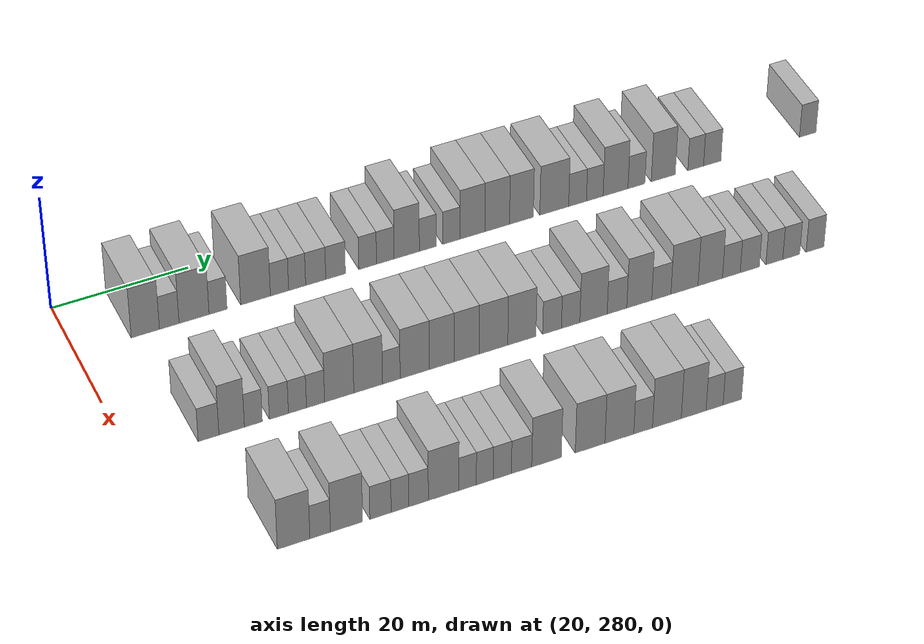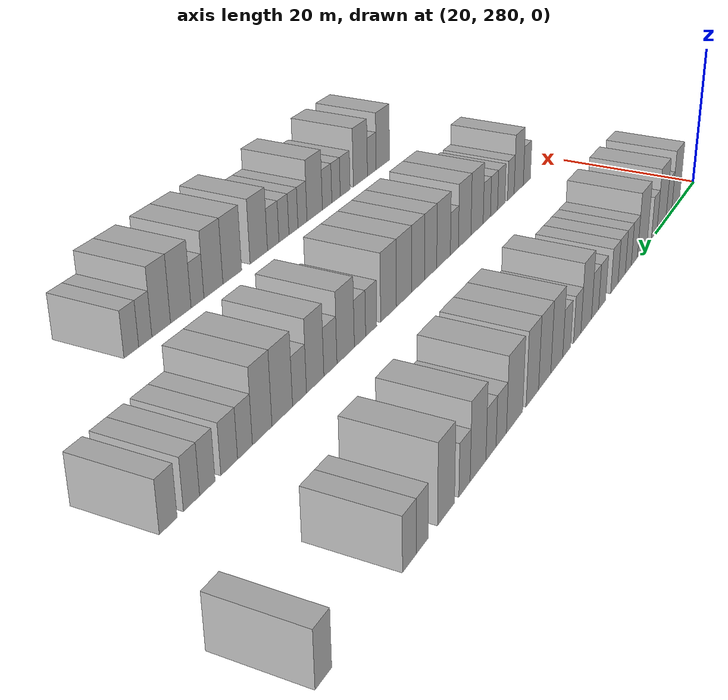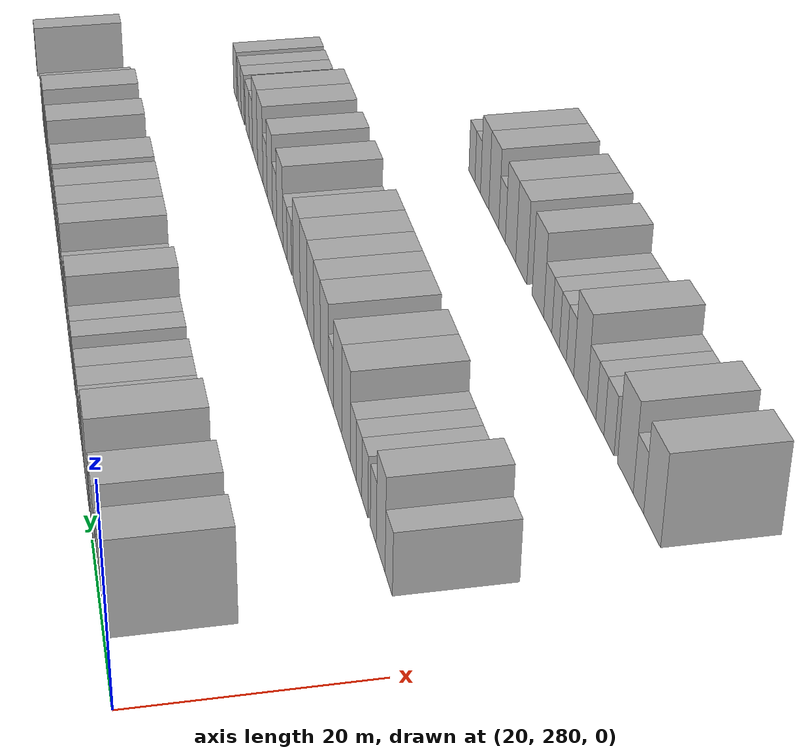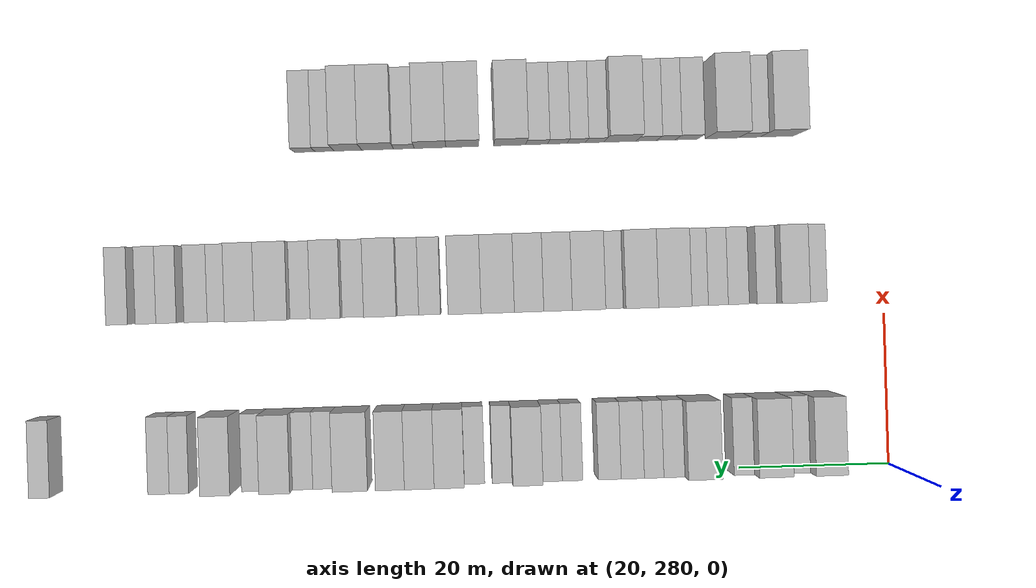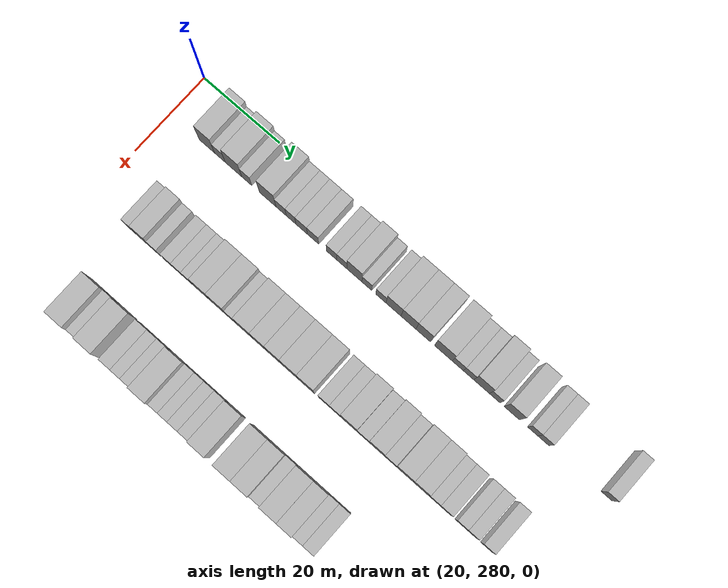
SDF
<sdf version="1.6">
 <world name="default">
  <model name="building_173">
   <static>1</static>
   <pose>25.0000 289.9351 0 0.000000 0.000000 0.000000</pose>
   <link name="link">
    <pose>0 0 4.50 0 0 0</pose>
    <collision name="collision"><geometry><box><size>10.0000 4.0718 9.0000</size></box></geometry></collision>
    <visual name="visual">
     <cast_shadows>0</cast_shadows>
     <geometry><box><size>10.0000 4.0718 9.0000</size></box></geometry>
     <material>
      <script>
       <uri>model://HANNAS_wall/materials/scripts</uri>
       <uri>model://HANNAS_wall/materials/textures</uri>
       <name>vrc/HANNAS_wall</name>
      </script>
     </material>
    </visual>
   </link>
  </model>
  <model name="building_174">
   <static>1</static>
   <pose>25.0000 293.3876 0 0.000000 0.000000 0.000000</pose>
   <link name="link">
    <pose>0 0 3.00 0 0 0</pose>
    <collision name="collision"><geometry><box><size>10.0000 2.8333 6.0000</size></box></geometry></collision>
    <visual name="visual">
     <cast_shadows>0</cast_shadows>
     <geometry><box><size>10.0000 2.8333 6.0000</size></box></geometry>
     <material>
      <script>
       <uri>model://HANNAS_wall/materials/scripts</uri>
       <uri>model://HANNAS_wall/materials/textures</uri>
       <name>vrc/HANNAS_wall</name>
      </script>
     </material>
    </visual>
   </link>
  </model>
  <model name="building_175">
   <static>1</static>
   <pose>25.0000 296.9872 0 0.000000 0.000000 0.000000</pose>
   <link name="link">
    <pose>0 0 4.50 0 0 0</pose>
    <collision name="collision"><geometry><box><size>10.0000 4.3659 9.0000</size></box></geometry></collision>
    <visual name="visual">
     <cast_shadows>0</cast_shadows>
     <geometry><box><size>10.0000 4.3659 9.0000</size></box></geometry>
     <material>
      <script>
       <uri>model://HANNAS_wall/materials/scripts</uri>
       <uri>model://HANNAS_wall/materials/textures</uri>
       <name>vrc/HANNAS_wall</name>
      </script>
     </material>
    </visual>
   </link>
  </model>
  <model name="building_176">
   <static>1</static>
   <pose>25.0000 300.4805 0 0.000000 0.000000 0.000000</pose>
   <link name="link">
    <pose>0 0 3.00 0 0 0</pose>
    <collision name="collision"><geometry><box><size>10.0000 2.6206 6.0000</size></box></geometry></collision>
    <visual name="visual">
     <cast_shadows>0</cast_shadows>
     <geometry><box><size>10.0000 2.6206 6.0000</size></box></geometry>
     <material>
      <script>
       <uri>model://HANNAS_wall/materials/scripts</uri>
       <uri>model://HANNAS_wall/materials/textures</uri>
       <name>vrc/HANNAS_wall</name>
      </script>
     </material>
    </visual>
   </link>
  </model>
  <model name="building_177">
   <static>1</static>
   <pose>25.0000 305.9684 0 0.000000 0.000000 0.000000</pose>
   <link name="link">
    <pose>0 0 4.50 0 0 0</pose>
    <collision name="collision"><geometry><box><size>10.0000 4.3552 9.0000</size></box></geometry></collision>
    <visual name="visual">
     <cast_shadows>0</cast_shadows>
     <geometry><box><size>10.0000 4.3552 9.0000</size></box></geometry>
     <material>
      <script>
       <uri>model://HANNAS_wall/materials/scripts</uri>
       <uri>model://HANNAS_wall/materials/textures</uri>
       <name>vrc/HANNAS_wall</name>
      </script>
     </material>
    </visual>
   </link>
  </model>
  <model name="building_178">
   <static>1</static>
   <pose>25.0000 309.4941 0 0.000000 0.000000 0.000000</pose>
   <link name="link">
    <pose>0 0 3.00 0 0 0</pose>
    <collision name="collision"><geometry><box><size>10.0000 2.6962 6.0000</size></box></geometry></collision>
    <visual name="visual">
     <cast_shadows>0</cast_shadows>
     <geometry><box><size>10.0000 2.6962 6.0000</size></box></geometry>
     <material>
      <script>
       <uri>model://HANNAS_wall/materials/scripts</uri>
       <uri>model://HANNAS_wall/materials/textures</uri>
       <name>vrc/HANNAS_wall</name>
      </script>
     </material>
    </visual>
   </link>
  </model>
  <model name="building_179">
   <static>1</static>
   <pose>25.0000 312.0990 0 0.000000 0.000000 0.000000</pose>
   <link name="link">
    <pose>0 0 3.00 0 0 0</pose>
    <collision name="collision"><geometry><box><size>10.0000 2.5136 6.0000</size></box></geometry></collision>
    <visual name="visual">
     <cast_shadows>0</cast_shadows>
     <geometry><box><size>10.0000 2.5136 6.0000</size></box></geometry>
     <material>
      <script>
       <uri>model://HANNAS_wall/materials/scripts</uri>
       <uri>model://HANNAS_wall/materials/textures</uri>
       <name>vrc/HANNAS_wall</name>
      </script>
     </material>
    </visual>
   </link>
  </model>
  <model name="building_180">
   <static>1</static>
   <pose>25.0000 314.8518 0 0.000000 0.000000 0.000000</pose>
   <link name="link">
    <pose>0 0 3.00 0 0 0</pose>
    <collision name="collision"><geometry><box><size>10.0000 2.9920 6.0000</size></box></geometry></collision>
    <visual name="visual">
     <cast_shadows>0</cast_shadows>
     <geometry><box><size>10.0000 2.9920 6.0000</size></box></geometry>
     <material>
      <script>
       <uri>model://HANNAS_wall/materials/scripts</uri>
       <uri>model://HANNAS_wall/materials/textures</uri>
       <name>vrc/HANNAS_wall</name>
      </script>
     </material>
    </visual>
   </link>
  </model>
  <model name="building_181">
   <static>1</static>
   <pose>25.0000 317.8116 0 0.000000 0.000000 0.000000</pose>
   <link name="link">
    <pose>0 0 3.00 0 0 0</pose>
    <collision name="collision"><geometry><box><size>10.0000 2.9275 6.0000</size></box></geometry></collision>
    <visual name="visual">
     <cast_shadows>0</cast_shadows>
     <geometry><box><size>10.0000 2.9275 6.0000</size></box></geometry>
     <material>
      <script>
       <uri>model://HANNAS_wall/materials/scripts</uri>
       <uri>model://HANNAS_wall/materials/textures</uri>
       <name>vrc/HANNAS_wall</name>
      </script>
     </material>
    </visual>
   </link>
  </model>
  <model name="building_182">
   <static>1</static>
   <pose>25.0000 322.6029 0 0.000000 0.000000 0.000000</pose>
   <link name="link">
    <pose>0 0 3.00 0 0 0</pose>
    <collision name="collision"><geometry><box><size>10.0000 2.6552 6.0000</size></box></geometry></collision>
    <visual name="visual">
     <cast_shadows>0</cast_shadows>
     <geometry><box><size>10.0000 2.6552 6.0000</size></box></geometry>
     <material>
      <script>
       <uri>model://HANNAS_wall/materials/scripts</uri>
       <uri>model://HANNAS_wall/materials/textures</uri>
       <name>vrc/HANNAS_wall</name>
      </script>
     </material>
    </visual>
   </link>
  </model>
  <model name="building_183">
   <static>1</static>
   <pose>25.0000 325.2540 0 0.000000 0.000000 0.000000</pose>
   <link name="link">
    <pose>0 0 3.00 0 0 0</pose>
    <collision name="collision"><geometry><box><size>10.0000 2.6469 6.0000</size></box></geometry></collision>
    <visual name="visual">
     <cast_shadows>0</cast_shadows>
     <geometry><box><size>10.0000 2.6469 6.0000</size></box></geometry>
     <material>
      <script>
       <uri>model://HANNAS_wall/materials/scripts</uri>
       <uri>model://HANNAS_wall/materials/textures</uri>
       <name>vrc/HANNAS_wall</name>
      </script>
     </material>
    </visual>
   </link>
  </model>
  <model name="building_184">
   <static>1</static>
   <pose>25.0000 328.4794 0 0.000000 0.000000 0.000000</pose>
   <link name="link">
    <pose>0 0 4.50 0 0 0</pose>
    <collision name="collision"><geometry><box><size>10.0000 3.8039 9.0000</size></box></geometry></collision>
    <visual name="visual">
     <cast_shadows>0</cast_shadows>
     <geometry><box><size>10.0000 3.8039 9.0000</size></box></geometry>
     <material>
      <script>
       <uri>model://HANNAS_wall/materials/scripts</uri>
       <uri>model://HANNAS_wall/materials/textures</uri>
       <name>vrc/HANNAS_wall</name>
      </script>
     </material>
    </visual>
   </link>
  </model>
  <model name="building_185">
   <static>1</static>
   <pose>25.0000 331.6478 0 0.000000 0.000000 0.000000</pose>
   <link name="link">
    <pose>0 0 3.00 0 0 0</pose>
    <collision name="collision"><geometry><box><size>10.0000 2.5330 6.0000</size></box></geometry></collision>
    <visual name="visual">
     <cast_shadows>0</cast_shadows>
     <geometry><box><size>10.0000 2.5330 6.0000</size></box></geometry>
     <material>
      <script>
       <uri>model://HANNAS_wall/materials/scripts</uri>
       <uri>model://HANNAS_wall/materials/textures</uri>
       <name>vrc/HANNAS_wall</name>
      </script>
     </material>
    </visual>
   </link>
  </model>
  <model name="building_186">
   <static>1</static>
   <pose>25.0000 335.2297 0 0.000000 0.000000 0.000000</pose>
   <link name="link">
    <pose>0 0 3.00 0 0 0</pose>
    <collision name="collision"><geometry><box><size>10.0000 2.6307 6.0000</size></box></geometry></collision>
    <visual name="visual">
     <cast_shadows>0</cast_shadows>
     <geometry><box><size>10.0000 2.6307 6.0000</size></box></geometry>
     <material>
      <script>
       <uri>model://HANNAS_wall/materials/scripts</uri>
       <uri>model://HANNAS_wall/materials/textures</uri>
       <name>vrc/HANNAS_wall</name>
      </script>
     </material>
    </visual>
   </link>
  </model>
  <model name="building_187">
   <static>1</static>
   <pose>25.0000 338.4573 0 0.000000 0.000000 0.000000</pose>
   <link name="link">
    <pose>0 0 4.50 0 0 0</pose>
    <collision name="collision"><geometry><box><size>10.0000 3.8247 9.0000</size></box></geometry></collision>
    <visual name="visual">
     <cast_shadows>0</cast_shadows>
     <geometry><box><size>10.0000 3.8247 9.0000</size></box></geometry>
     <material>
      <script>
       <uri>model://HANNAS_wall/materials/scripts</uri>
       <uri>model://HANNAS_wall/materials/textures</uri>
       <name>vrc/HANNAS_wall</name>
      </script>
     </material>
    </visual>
   </link>
  </model>
  <model name="building_188">
   <static>1</static>
   <pose>25.0000 342.2574 0 0.000000 0.000000 0.000000</pose>
   <link name="link">
    <pose>0 0 4.50 0 0 0</pose>
    <collision name="collision"><geometry><box><size>10.0000 3.7754 9.0000</size></box></geometry></collision>
    <visual name="visual">
     <cast_shadows>0</cast_shadows>
     <geometry><box><size>10.0000 3.7754 9.0000</size></box></geometry>
     <material>
      <script>
       <uri>model://HANNAS_wall/materials/scripts</uri>
       <uri>model://HANNAS_wall/materials/textures</uri>
       <name>vrc/HANNAS_wall</name>
      </script>
     </material>
    </visual>
   </link>
  </model>
  <model name="building_189">
   <static>1</static>
   <pose>25.0000 345.9804 0 0.000000 0.000000 0.000000</pose>
   <link name="link">
    <pose>0 0 4.50 0 0 0</pose>
    <collision name="collision"><geometry><box><size>10.0000 3.6707 9.0000</size></box></geometry></collision>
    <visual name="visual">
     <cast_shadows>0</cast_shadows>
     <geometry><box><size>10.0000 3.6707 9.0000</size></box></geometry>
     <material>
      <script>
       <uri>model://HANNAS_wall/materials/scripts</uri>
       <uri>model://HANNAS_wall/materials/textures</uri>
       <name>vrc/HANNAS_wall</name>
      </script>
     </material>
    </visual>
   </link>
  </model>
  <model name="building_190">
   <static>1</static>
   <pose>25.0000 351.0580 0 0.000000 0.000000 0.000000</pose>
   <link name="link">
    <pose>0 0 4.50 0 0 0</pose>
    <collision name="collision"><geometry><box><size>10.0000 4.4845 9.0000</size></box></geometry></collision>
    <visual name="visual">
     <cast_shadows>0</cast_shadows>
     <geometry><box><size>10.0000 4.4845 9.0000</size></box></geometry>
     <material>
      <script>
       <uri>model://HANNAS_wall/materials/scripts</uri>
       <uri>model://HANNAS_wall/materials/textures</uri>
       <name>vrc/HANNAS_wall</name>
      </script>
     </material>
    </visual>
   </link>
  </model>
  <model name="building_191">
   <static>1</static>
   <pose>25.0000 354.6839 0 0.000000 0.000000 0.000000</pose>
   <link name="link">
    <pose>0 0 3.00 0 0 0</pose>
    <collision name="collision"><geometry><box><size>10.0000 2.7673 6.0000</size></box></geometry></collision>
    <visual name="visual">
     <cast_shadows>0</cast_shadows>
     <geometry><box><size>10.0000 2.7673 6.0000</size></box></geometry>
     <material>
      <script>
       <uri>model://HANNAS_wall/materials/scripts</uri>
       <uri>model://HANNAS_wall/materials/textures</uri>
       <name>vrc/HANNAS_wall</name>
      </script>
     </material>
    </visual>
   </link>
  </model>
  <model name="building_192">
   <static>1</static>
   <pose>25.0000 357.3689 0 0.000000 0.000000 0.000000</pose>
   <link name="link">
    <pose>0 0 3.00 0 0 0</pose>
    <collision name="collision"><geometry><box><size>10.0000 2.6028 6.0000</size></box></geometry></collision>
    <visual name="visual">
     <cast_shadows>0</cast_shadows>
     <geometry><box><size>10.0000 2.6028 6.0000</size></box></geometry>
     <material>
      <script>
       <uri>model://HANNAS_wall/materials/scripts</uri>
       <uri>model://HANNAS_wall/materials/textures</uri>
       <name>vrc/HANNAS_wall</name>
      </script>
     </material>
    </visual>
   </link>
  </model>
  <model name="building_193">
   <static>1</static>
   <pose>25.0000 360.6228 0 0.000000 0.000000 0.000000</pose>
   <link name="link">
    <pose>0 0 4.50 0 0 0</pose>
    <collision name="collision"><geometry><box><size>10.0000 3.9051 9.0000</size></box></geometry></collision>
    <visual name="visual">
     <cast_shadows>0</cast_shadows>
     <geometry><box><size>10.0000 3.9051 9.0000</size></box></geometry>
     <material>
      <script>
       <uri>model://HANNAS_wall/materials/scripts</uri>
       <uri>model://HANNAS_wall/materials/textures</uri>
       <name>vrc/HANNAS_wall</name>
      </script>
     </material>
    </visual>
   </link>
  </model>
  <model name="building_194">
   <static>1</static>
   <pose>25.0000 363.9101 0 0.000000 0.000000 0.000000</pose>
   <link name="link">
    <pose>0 0 3.00 0 0 0</pose>
    <collision name="collision"><geometry><box><size>10.0000 2.6695 6.0000</size></box></geometry></collision>
    <visual name="visual">
     <cast_shadows>0</cast_shadows>
     <geometry><box><size>10.0000 2.6695 6.0000</size></box></geometry>
     <material>
      <script>
       <uri>model://HANNAS_wall/materials/scripts</uri>
       <uri>model://HANNAS_wall/materials/textures</uri>
       <name>vrc/HANNAS_wall</name>
      </script>
     </material>
    </visual>
   </link>
  </model>
  <model name="building_195">
   <static>1</static>
   <pose>25.0000 368.1461 0 0.000000 0.000000 0.000000</pose>
   <link name="link">
    <pose>0 0 4.50 0 0 0</pose>
    <collision name="collision"><geometry><box><size>10.0000 3.8025 9.0000</size></box></geometry></collision>
    <visual name="visual">
     <cast_shadows>0</cast_shadows>
     <geometry><box><size>10.0000 3.8025 9.0000</size></box></geometry>
     <material>
      <script>
       <uri>model://HANNAS_wall/materials/scripts</uri>
       <uri>model://HANNAS_wall/materials/textures</uri>
       <name>vrc/HANNAS_wall</name>
      </script>
     </material>
    </visual>
   </link>
  </model>
  <model name="building_196">
   <static>1</static>
   <pose>25.0000 373.3013 0 0.000000 0.000000 0.000000</pose>
   <link name="link">
    <pose>0 0 3.00 0 0 0</pose>
    <collision name="collision"><geometry><box><size>10.0000 2.5080 6.0000</size></box></geometry></collision>
    <visual name="visual">
     <cast_shadows>0</cast_shadows>
     <geometry><box><size>10.0000 2.5080 6.0000</size></box></geometry>
     <material>
      <script>
       <uri>model://HANNAS_wall/materials/scripts</uri>
       <uri>model://HANNAS_wall/materials/textures</uri>
       <name>vrc/HANNAS_wall</name>
      </script>
     </material>
    </visual>
   </link>
  </model>
  <model name="building_197">
   <static>1</static>
   <pose>25.0000 375.9364 0 0.000000 0.000000 0.000000</pose>
   <link name="link">
    <pose>0 0 3.00 0 0 0</pose>
    <collision name="collision"><geometry><box><size>10.0000 2.7621 6.0000</size></box></geometry></collision>
    <visual name="visual">
     <cast_shadows>0</cast_shadows>
     <geometry><box><size>10.0000 2.7621 6.0000</size></box></geometry>
     <material>
      <script>
       <uri>model://HANNAS_wall/materials/scripts</uri>
       <uri>model://HANNAS_wall/materials/textures</uri>
       <name>vrc/HANNAS_wall</name>
      </script>
     </material>
    </visual>
   </link>
  </model>
  <model name="building_198">
   <static>1</static>
   <pose>25.0000 391.3375 0 0.000000 0.000000 0.000000</pose>
   <link name="link">
    <pose>0 0 3.00 0 0 0</pose>
    <collision name="collision"><geometry><box><size>10.0000 2.6801 6.0000</size></box></geometry></collision>
    <visual name="visual">
     <cast_shadows>0</cast_shadows>
     <geometry><box><size>10.0000 2.6801 6.0000</size></box></geometry>
     <material>
      <script>
       <uri>model://HANNAS_wall/materials/scripts</uri>
       <uri>model://HANNAS_wall/materials/textures</uri>
       <name>vrc/HANNAS_wall</name>
      </script>
     </material>
    </visual>
   </link>
  </model>
  <model name="building_374">
   <static>1</static>
   <pose>47.0000 290.5234 0 0.000000 0.000000 0.000000</pose>
   <link name="link">
    <pose>0 0 3.00 0 0 0</pose>
    <collision name="collision"><geometry><box><size>10.0000 2.9146 6.0000</size></box></geometry></collision>
    <visual name="visual">
     <cast_shadows>0</cast_shadows>
     <geometry><box><size>10.0000 2.9146 6.0000</size></box></geometry>
     <material>
      <script>
       <uri>model://HANNAS_wall/materials/scripts</uri>
       <uri>model://HANNAS_wall/materials/textures</uri>
       <name>vrc/HANNAS_wall</name>
      </script>
     </material>
    </visual>
   </link>
  </model>
  <model name="building_375">
   <static>1</static>
   <pose>47.0000 293.7831 0 0.000000 0.000000 0.000000</pose>
   <link name="link">
    <pose>0 0 4.50 0 0 0</pose>
    <collision name="collision"><geometry><box><size>10.0000 3.6046 9.0000</size></box></geometry></collision>
    <visual name="visual">
     <cast_shadows>0</cast_shadows>
     <geometry><box><size>10.0000 3.6046 9.0000</size></box></geometry>
     <material>
      <script>
       <uri>model://HANNAS_wall/materials/scripts</uri>
       <uri>model://HANNAS_wall/materials/textures</uri>
       <name>vrc/HANNAS_wall</name>
      </script>
     </material>
    </visual>
   </link>
  </model>
  <model name="building_376">
   <static>1</static>
   <pose>47.0000 296.8515 0 0.000000 0.000000 0.000000</pose>
   <link name="link">
    <pose>0 0 3.00 0 0 0</pose>
    <collision name="collision"><geometry><box><size>10.0000 2.5322 6.0000</size></box></geometry></collision>
    <visual name="visual">
     <cast_shadows>0</cast_shadows>
     <geometry><box><size>10.0000 2.5322 6.0000</size></box></geometry>
     <material>
      <script>
       <uri>model://HANNAS_wall/materials/scripts</uri>
       <uri>model://HANNAS_wall/materials/textures</uri>
       <name>vrc/HANNAS_wall</name>
      </script>
     </material>
    </visual>
   </link>
  </model>
  <model name="building_377">
   <static>1</static>
   <pose>47.0000 300.4702 0 0.000000 0.000000 0.000000</pose>
   <link name="link">
    <pose>0 0 3.00 0 0 0</pose>
    <collision name="collision"><geometry><box><size>10.0000 2.7052 6.0000</size></box></geometry></collision>
    <visual name="visual">
     <cast_shadows>0</cast_shadows>
     <geometry><box><size>10.0000 2.7052 6.0000</size></box></geometry>
     <material>
      <script>
       <uri>model://HANNAS_wall/materials/scripts</uri>
       <uri>model://HANNAS_wall/materials/textures</uri>
       <name>vrc/HANNAS_wall</name>
      </script>
     </material>
    </visual>
   </link>
  </model>
  <model name="building_378">
   <static>1</static>
   <pose>47.0000 303.1088 0 0.000000 0.000000 0.000000</pose>
   <link name="link">
    <pose>0 0 3.00 0 0 0</pose>
    <collision name="collision"><geometry><box><size>10.0000 2.5720 6.0000</size></box></geometry></collision>
    <visual name="visual">
     <cast_shadows>0</cast_shadows>
     <geometry><box><size>10.0000 2.5720 6.0000</size></box></geometry>
     <material>
      <script>
       <uri>model://HANNAS_wall/materials/scripts</uri>
       <uri>model://HANNAS_wall/materials/textures</uri>
       <name>vrc/HANNAS_wall</name>
      </script>
     </material>
    </visual>
   </link>
  </model>
  <model name="building_379">
   <static>1</static>
   <pose>47.0000 305.6929 0 0.000000 0.000000 0.000000</pose>
   <link name="link">
    <pose>0 0 3.00 0 0 0</pose>
    <collision name="collision"><geometry><box><size>10.0000 2.5963 6.0000</size></box></geometry></collision>
    <visual name="visual">
     <cast_shadows>0</cast_shadows>
     <geometry><box><size>10.0000 2.5963 6.0000</size></box></geometry>
     <material>
      <script>
       <uri>model://HANNAS_wall/materials/scripts</uri>
       <uri>model://HANNAS_wall/materials/textures</uri>
       <name>vrc/HANNAS_wall</name>
      </script>
     </material>
    </visual>
   </link>
  </model>
  <model name="building_380">
   <static>1</static>
   <pose>47.0000 309.0970 0 0.000000 0.000000 0.000000</pose>
   <link name="link">
    <pose>0 0 4.50 0 0 0</pose>
    <collision name="collision"><geometry><box><size>10.0000 4.2119 9.0000</size></box></geometry></collision>
    <visual name="visual">
     <cast_shadows>0</cast_shadows>
     <geometry><box><size>10.0000 4.2119 9.0000</size></box></geometry>
     <material>
      <script>
       <uri>model://HANNAS_wall/materials/scripts</uri>
       <uri>model://HANNAS_wall/materials/textures</uri>
       <name>vrc/HANNAS_wall</name>
      </script>
     </material>
    </visual>
   </link>
  </model>
  <model name="building_381">
   <static>1</static>
   <pose>47.0000 313.2778 0 0.000000 0.000000 0.000000</pose>
   <link name="link">
    <pose>0 0 4.50 0 0 0</pose>
    <collision name="collision"><geometry><box><size>10.0000 4.1498 9.0000</size></box></geometry></collision>
    <visual name="visual">
     <cast_shadows>0</cast_shadows>
     <geometry><box><size>10.0000 4.1498 9.0000</size></box></geometry>
     <material>
      <script>
       <uri>model://HANNAS_wall/materials/scripts</uri>
       <uri>model://HANNAS_wall/materials/textures</uri>
       <name>vrc/HANNAS_wall</name>
      </script>
     </material>
    </visual>
   </link>
  </model>
  <model name="building_382">
   <static>1</static>
   <pose>47.0000 316.6259 0 0.000000 0.000000 0.000000</pose>
   <link name="link">
    <pose>0 0 3.00 0 0 0</pose>
    <collision name="collision"><geometry><box><size>10.0000 2.5463 6.0000</size></box></geometry></collision>
    <visual name="visual">
     <cast_shadows>0</cast_shadows>
     <geometry><box><size>10.0000 2.5463 6.0000</size></box></geometry>
     <material>
      <script>
       <uri>model://HANNAS_wall/materials/scripts</uri>
       <uri>model://HANNAS_wall/materials/textures</uri>
       <name>vrc/HANNAS_wall</name>
      </script>
     </material>
    </visual>
   </link>
  </model>
  <model name="building_383">
   <static>1</static>
   <pose>47.0000 320.0241 0 0.000000 0.000000 0.000000</pose>
   <link name="link">
    <pose>0 0 4.50 0 0 0</pose>
    <collision name="collision"><geometry><box><size>10.0000 4.2503 9.0000</size></box></geometry></collision>
    <visual name="visual">
     <cast_shadows>0</cast_shadows>
     <geometry><box><size>10.0000 4.2503 9.0000</size></box></geometry>
     <material>
      <script>
       <uri>model://HANNAS_wall/materials/scripts</uri>
       <uri>model://HANNAS_wall/materials/textures</uri>
       <name>vrc/HANNAS_wall</name>
      </script>
     </material>
    </visual>
   </link>
  </model>
  <model name="building_384">
   <static>1</static>
   <pose>47.0000 323.9577 0 0.000000 0.000000 0.000000</pose>
   <link name="link">
    <pose>0 0 4.50 0 0 0</pose>
    <collision name="collision"><geometry><box><size>10.0000 3.6169 9.0000</size></box></geometry></collision>
    <visual name="visual">
     <cast_shadows>0</cast_shadows>
     <geometry><box><size>10.0000 3.6169 9.0000</size></box></geometry>
     <material>
      <script>
       <uri>model://HANNAS_wall/materials/scripts</uri>
       <uri>model://HANNAS_wall/materials/textures</uri>
       <name>vrc/HANNAS_wall</name>
      </script>
     </material>
    </visual>
   </link>
  </model>
  <model name="building_385">
   <static>1</static>
   <pose>47.0000 327.6252 0 0.000000 0.000000 0.000000</pose>
   <link name="link">
    <pose>0 0 4.50 0 0 0</pose>
    <collision name="collision"><geometry><box><size>10.0000 3.7182 9.0000</size></box></geometry></collision>
    <visual name="visual">
     <cast_shadows>0</cast_shadows>
     <geometry><box><size>10.0000 3.7182 9.0000</size></box></geometry>
     <material>
      <script>
       <uri>model://HANNAS_wall/materials/scripts</uri>
       <uri>model://HANNAS_wall/materials/textures</uri>
       <name>vrc/HANNAS_wall</name>
      </script>
     </material>
    </visual>
   </link>
  </model>
  <model name="building_386">
   <static>1</static>
   <pose>47.0000 331.5969 0 0.000000 0.000000 0.000000</pose>
   <link name="link">
    <pose>0 0 4.50 0 0 0</pose>
    <collision name="collision"><geometry><box><size>10.0000 4.2251 9.0000</size></box></geometry></collision>
    <visual name="visual">
     <cast_shadows>0</cast_shadows>
     <geometry><box><size>10.0000 4.2251 9.0000</size></box></geometry>
     <material>
      <script>
       <uri>model://HANNAS_wall/materials/scripts</uri>
       <uri>model://HANNAS_wall/materials/textures</uri>
       <name>vrc/HANNAS_wall</name>
      </script>
     </material>
    </visual>
   </link>
  </model>
  <model name="building_387">
   <static>1</static>
   <pose>47.0000 335.8012 0 0.000000 0.000000 0.000000</pose>
   <link name="link">
    <pose>0 0 4.50 0 0 0</pose>
    <collision name="collision"><geometry><box><size>10.0000 4.1834 9.0000</size></box></geometry></collision>
    <visual name="visual">
     <cast_shadows>0</cast_shadows>
     <geometry><box><size>10.0000 4.1834 9.0000</size></box></geometry>
     <material>
      <script>
       <uri>model://HANNAS_wall/materials/scripts</uri>
       <uri>model://HANNAS_wall/materials/textures</uri>
       <name>vrc/HANNAS_wall</name>
      </script>
     </material>
    </visual>
   </link>
  </model>
  <model name="building_388">
   <static>1</static>
   <pose>47.0000 340.2996 0 0.000000 0.000000 0.000000</pose>
   <link name="link">
    <pose>0 0 3.00 0 0 0</pose>
    <collision name="collision"><geometry><box><size>10.0000 2.8135 6.0000</size></box></geometry></collision>
    <visual name="visual">
     <cast_shadows>0</cast_shadows>
     <geometry><box><size>10.0000 2.8135 6.0000</size></box></geometry>
     <material>
      <script>
       <uri>model://HANNAS_wall/materials/scripts</uri>
       <uri>model://HANNAS_wall/materials/textures</uri>
       <name>vrc/HANNAS_wall</name>
      </script>
     </material>
    </visual>
   </link>
  </model>
  <model name="building_389">
   <static>1</static>
   <pose>47.0000 343.0865 0 0.000000 0.000000 0.000000</pose>
   <link name="link">
    <pose>0 0 3.00 0 0 0</pose>
    <collision name="collision"><geometry><box><size>10.0000 2.7603 6.0000</size></box></geometry></collision>
    <visual name="visual">
     <cast_shadows>0</cast_shadows>
     <geometry><box><size>10.0000 2.7603 6.0000</size></box></geometry>
     <material>
      <script>
       <uri>model://HANNAS_wall/materials/scripts</uri>
       <uri>model://HANNAS_wall/materials/textures</uri>
       <name>vrc/HANNAS_wall</name>
      </script>
     </material>
    </visual>
   </link>
  </model>
  <model name="building_390">
   <static>1</static>
   <pose>47.0000 346.5246 0 0.000000 0.000000 0.000000</pose>
   <link name="link">
    <pose>0 0 4.50 0 0 0</pose>
    <collision name="collision"><geometry><box><size>10.0000 4.1160 9.0000</size></box></geometry></collision>
    <visual name="visual">
     <cast_shadows>0</cast_shadows>
     <geometry><box><size>10.0000 4.1160 9.0000</size></box></geometry>
     <material>
      <script>
       <uri>model://HANNAS_wall/materials/scripts</uri>
       <uri>model://HANNAS_wall/materials/textures</uri>
       <name>vrc/HANNAS_wall</name>
      </script>
     </material>
    </visual>
   </link>
  </model>
  <model name="building_391">
   <static>1</static>
   <pose>47.0000 350.0705 0 0.000000 0.000000 0.000000</pose>
   <link name="link">
    <pose>0 0 3.00 0 0 0</pose>
    <collision name="collision"><geometry><box><size>10.0000 2.9757 6.0000</size></box></geometry></collision>
    <visual name="visual">
     <cast_shadows>0</cast_shadows>
     <geometry><box><size>10.0000 2.9757 6.0000</size></box></geometry>
     <material>
      <script>
       <uri>model://HANNAS_wall/materials/scripts</uri>
       <uri>model://HANNAS_wall/materials/textures</uri>
       <name>vrc/HANNAS_wall</name>
      </script>
     </material>
    </visual>
   </link>
  </model>
  <model name="building_392">
   <static>1</static>
   <pose>47.0000 353.4564 0 0.000000 0.000000 0.000000</pose>
   <link name="link">
    <pose>0 0 4.50 0 0 0</pose>
    <collision name="collision"><geometry><box><size>10.0000 3.7961 9.0000</size></box></geometry></collision>
    <visual name="visual">
     <cast_shadows>0</cast_shadows>
     <geometry><box><size>10.0000 3.7961 9.0000</size></box></geometry>
     <material>
      <script>
       <uri>model://HANNAS_wall/materials/scripts</uri>
       <uri>model://HANNAS_wall/materials/textures</uri>
       <name>vrc/HANNAS_wall</name>
      </script>
     </material>
    </visual>
   </link>
  </model>
  <model name="building_393">
   <static>1</static>
   <pose>47.0000 356.8212 0 0.000000 0.000000 0.000000</pose>
   <link name="link">
    <pose>0 0 3.00 0 0 0</pose>
    <collision name="collision"><geometry><box><size>10.0000 2.9336 6.0000</size></box></geometry></collision>
    <visual name="visual">
     <cast_shadows>0</cast_shadows>
     <geometry><box><size>10.0000 2.9336 6.0000</size></box></geometry>
     <material>
      <script>
       <uri>model://HANNAS_wall/materials/scripts</uri>
       <uri>model://HANNAS_wall/materials/textures</uri>
       <name>vrc/HANNAS_wall</name>
      </script>
     </material>
    </visual>
   </link>
  </model>
  <model name="building_394">
   <static>1</static>
   <pose>47.0000 360.3634 0 0.000000 0.000000 0.000000</pose>
   <link name="link">
    <pose>0 0 4.50 0 0 0</pose>
    <collision name="collision"><geometry><box><size>10.0000 4.1508 9.0000</size></box></geometry></collision>
    <visual name="visual">
     <cast_shadows>0</cast_shadows>
     <geometry><box><size>10.0000 4.1508 9.0000</size></box></geometry>
     <material>
      <script>
       <uri>model://HANNAS_wall/materials/scripts</uri>
       <uri>model://HANNAS_wall/materials/textures</uri>
       <name>vrc/HANNAS_wall</name>
      </script>
     </material>
    </visual>
   </link>
  </model>
  <model name="building_395">
   <static>1</static>
   <pose>47.0000 364.3184 0 0.000000 0.000000 0.000000</pose>
   <link name="link">
    <pose>0 0 4.50 0 0 0</pose>
    <collision name="collision"><geometry><box><size>10.0000 3.7593 9.0000</size></box></geometry></collision>
    <visual name="visual">
     <cast_shadows>0</cast_shadows>
     <geometry><box><size>10.0000 3.7593 9.0000</size></box></geometry>
     <material>
      <script>
       <uri>model://HANNAS_wall/materials/scripts</uri>
       <uri>model://HANNAS_wall/materials/textures</uri>
       <name>vrc/HANNAS_wall</name>
      </script>
     </material>
    </visual>
   </link>
  </model>
  <model name="building_396">
   <static>1</static>
   <pose>47.0000 367.5685 0 0.000000 0.000000 0.000000</pose>
   <link name="link">
    <pose>0 0 3.00 0 0 0</pose>
    <collision name="collision"><geometry><box><size>10.0000 2.7409 6.0000</size></box></geometry></collision>
    <visual name="visual">
     <cast_shadows>0</cast_shadows>
     <geometry><box><size>10.0000 2.7409 6.0000</size></box></geometry>
     <material>
      <script>
       <uri>model://HANNAS_wall/materials/scripts</uri>
       <uri>model://HANNAS_wall/materials/textures</uri>
       <name>vrc/HANNAS_wall</name>
      </script>
     </material>
    </visual>
   </link>
  </model>
  <model name="building_397">
   <static>1</static>
   <pose>47.0000 370.4321 0 0.000000 0.000000 0.000000</pose>
   <link name="link">
    <pose>0 0 3.00 0 0 0</pose>
    <collision name="collision"><geometry><box><size>10.0000 2.9864 6.0000</size></box></geometry></collision>
    <visual name="visual">
     <cast_shadows>0</cast_shadows>
     <geometry><box><size>10.0000 2.9864 6.0000</size></box></geometry>
     <material>
      <script>
       <uri>model://HANNAS_wall/materials/scripts</uri>
       <uri>model://HANNAS_wall/materials/textures</uri>
       <name>vrc/HANNAS_wall</name>
      </script>
     </material>
    </visual>
   </link>
  </model>
  <model name="building_398">
   <static>1</static>
   <pose>47.0000 374.2419 0 0.000000 0.000000 0.000000</pose>
   <link name="link">
    <pose>0 0 3.00 0 0 0</pose>
    <collision name="collision"><geometry><box><size>10.0000 2.6331 6.0000</size></box></geometry></collision>
    <visual name="visual">
     <cast_shadows>0</cast_shadows>
     <geometry><box><size>10.0000 2.6331 6.0000</size></box></geometry>
     <material>
      <script>
       <uri>model://HANNAS_wall/materials/scripts</uri>
       <uri>model://HANNAS_wall/materials/textures</uri>
       <name>vrc/HANNAS_wall</name>
      </script>
     </material>
    </visual>
   </link>
  </model>
  <model name="building_399">
   <static>1</static>
   <pose>47.0000 376.8853 0 0.000000 0.000000 0.000000</pose>
   <link name="link">
    <pose>0 0 3.00 0 0 0</pose>
    <collision name="collision"><geometry><box><size>10.0000 2.6536 6.0000</size></box></geometry></collision>
    <visual name="visual">
     <cast_shadows>0</cast_shadows>
     <geometry><box><size>10.0000 2.6536 6.0000</size></box></geometry>
     <material>
      <script>
       <uri>model://HANNAS_wall/materials/scripts</uri>
       <uri>model://HANNAS_wall/materials/textures</uri>
       <name>vrc/HANNAS_wall</name>
      </script>
     </material>
    </visual>
   </link>
  </model>
  <model name="building_400">
   <static>1</static>
   <pose>47.0000 380.6087 0 0.000000 0.000000 0.000000</pose>
   <link name="link">
    <pose>0 0 3.00 0 0 0</pose>
    <collision name="collision"><geometry><box><size>10.0000 2.7932 6.0000</size></box></geometry></collision>
    <visual name="visual">
     <cast_shadows>0</cast_shadows>
     <geometry><box><size>10.0000 2.7932 6.0000</size></box></geometry>
     <material>
      <script>
       <uri>model://HANNAS_wall/materials/scripts</uri>
       <uri>model://HANNAS_wall/materials/textures</uri>
       <name>vrc/HANNAS_wall</name>
      </script>
     </material>
    </visual>
   </link>
  </model>
  <model name="building_561">
   <static>1</static>
   <pose>69.0000 293.5484 0 0.000000 0.000000 0.000000</pose>
   <link name="link">
    <pose>0 0 4.50 0 0 0</pose>
    <collision name="collision"><geometry><box><size>10.0000 4.4750 9.0000</size></box></geometry></collision>
    <visual name="visual">
     <cast_shadows>0</cast_shadows>
     <geometry><box><size>10.0000 4.4750 9.0000</size></box></geometry>
     <material>
      <script>
       <uri>model://HANNAS_wall/materials/scripts</uri>
       <uri>model://HANNAS_wall/materials/textures</uri>
       <name>vrc/HANNAS_wall</name>
      </script>
     </material>
    </visual>
   </link>
  </model>
  <model name="building_562">
   <static>1</static>
   <pose>69.0000 297.2021 0 0.000000 0.000000 0.000000</pose>
   <link name="link">
    <pose>0 0 3.00 0 0 0</pose>
    <collision name="collision"><geometry><box><size>10.0000 2.8323 6.0000</size></box></geometry></collision>
    <visual name="visual">
     <cast_shadows>0</cast_shadows>
     <geometry><box><size>10.0000 2.8323 6.0000</size></box></geometry>
     <material>
      <script>
       <uri>model://HANNAS_wall/materials/scripts</uri>
       <uri>model://HANNAS_wall/materials/textures</uri>
       <name>vrc/HANNAS_wall</name>
      </script>
     </material>
    </visual>
   </link>
  </model>
  <model name="building_563">
   <static>1</static>
   <pose>69.0000 300.8499 0 0.000000 0.000000 0.000000</pose>
   <link name="link">
    <pose>0 0 4.50 0 0 0</pose>
    <collision name="collision"><geometry><box><size>10.0000 4.4635 9.0000</size></box></geometry></collision>
    <visual name="visual">
     <cast_shadows>0</cast_shadows>
     <geometry><box><size>10.0000 4.4635 9.0000</size></box></geometry>
     <material>
      <script>
       <uri>model://HANNAS_wall/materials/scripts</uri>
       <uri>model://HANNAS_wall/materials/textures</uri>
       <name>vrc/HANNAS_wall</name>
      </script>
     </material>
    </visual>
   </link>
  </model>
  <model name="building_564">
   <static>1</static>
   <pose>69.0000 305.5706 0 0.000000 0.000000 0.000000</pose>
   <link name="link">
    <pose>0 0 3.00 0 0 0</pose>
    <collision name="collision"><geometry><box><size>10.0000 2.9779 6.0000</size></box></geometry></collision>
    <visual name="visual">
     <cast_shadows>0</cast_shadows>
     <geometry><box><size>10.0000 2.9779 6.0000</size></box></geometry>
     <material>
      <script>
       <uri>model://HANNAS_wall/materials/scripts</uri>
       <uri>model://HANNAS_wall/materials/textures</uri>
       <name>vrc/HANNAS_wall</name>
      </script>
     </material>
    </visual>
   </link>
  </model>
  <model name="building_565">
   <static>1</static>
   <pose>69.0000 308.3003 0 0.000000 0.000000 0.000000</pose>
   <link name="link">
    <pose>0 0 3.00 0 0 0</pose>
    <collision name="collision"><geometry><box><size>10.0000 2.4815 6.0000</size></box></geometry></collision>
    <visual name="visual">
     <cast_shadows>0</cast_shadows>
     <geometry><box><size>10.0000 2.4815 6.0000</size></box></geometry>
     <material>
      <script>
       <uri>model://HANNAS_wall/materials/scripts</uri>
       <uri>model://HANNAS_wall/materials/textures</uri>
       <name>vrc/HANNAS_wall</name>
      </script>
     </material>
    </visual>
   </link>
  </model>
  <model name="building_566">
   <static>1</static>
   <pose>69.0000 310.9066 0 0.000000 0.000000 0.000000</pose>
   <link name="link">
    <pose>0 0 3.00 0 0 0</pose>
    <collision name="collision"><geometry><box><size>10.0000 2.7310 6.0000</size></box></geometry></collision>
    <visual name="visual">
     <cast_shadows>0</cast_shadows>
     <geometry><box><size>10.0000 2.7310 6.0000</size></box></geometry>
     <material>
      <script>
       <uri>model://HANNAS_wall/materials/scripts</uri>
       <uri>model://HANNAS_wall/materials/textures</uri>
       <name>vrc/HANNAS_wall</name>
      </script>
     </material>
    </visual>
   </link>
  </model>
  <model name="building_567">
   <static>1</static>
   <pose>69.0000 314.4314 0 0.000000 0.000000 0.000000</pose>
   <link name="link">
    <pose>0 0 4.50 0 0 0</pose>
    <collision name="collision"><geometry><box><size>10.0000 4.3187 9.0000</size></box></geometry></collision>
    <visual name="visual">
     <cast_shadows>0</cast_shadows>
     <geometry><box><size>10.0000 4.3187 9.0000</size></box></geometry>
     <material>
      <script>
       <uri>model://HANNAS_wall/materials/scripts</uri>
       <uri>model://HANNAS_wall/materials/textures</uri>
       <name>vrc/HANNAS_wall</name>
      </script>
     </material>
    </visual>
   </link>
  </model>
  <model name="building_568">
   <static>1</static>
   <pose>69.0000 317.8209 0 0.000000 0.000000 0.000000</pose>
   <link name="link">
    <pose>0 0 3.00 0 0 0</pose>
    <collision name="collision"><geometry><box><size>10.0000 2.4604 6.0000</size></box></geometry></collision>
    <visual name="visual">
     <cast_shadows>0</cast_shadows>
     <geometry><box><size>10.0000 2.4604 6.0000</size></box></geometry>
     <material>
      <script>
       <uri>model://HANNAS_wall/materials/scripts</uri>
       <uri>model://HANNAS_wall/materials/textures</uri>
       <name>vrc/HANNAS_wall</name>
      </script>
     </material>
    </visual>
   </link>
  </model>
  <model name="building_569">
   <static>1</static>
   <pose>69.0000 320.2540 0 0.000000 0.000000 0.000000</pose>
   <link name="link">
    <pose>0 0 3.00 0 0 0</pose>
    <collision name="collision"><geometry><box><size>10.0000 2.4058 6.0000</size></box></geometry></collision>
    <visual name="visual">
     <cast_shadows>0</cast_shadows>
     <geometry><box><size>10.0000 2.4058 6.0000</size></box></geometry>
     <material>
      <script>
       <uri>model://HANNAS_wall/materials/scripts</uri>
       <uri>model://HANNAS_wall/materials/textures</uri>
       <name>vrc/HANNAS_wall</name>
      </script>
     </material>
    </visual>
   </link>
  </model>
  <model name="building_570">
   <static>1</static>
   <pose>69.0000 322.7545 0 0.000000 0.000000 0.000000</pose>
   <link name="link">
    <pose>0 0 3.00 0 0 0</pose>
    <collision name="collision"><geometry><box><size>10.0000 2.5953 6.0000</size></box></geometry></collision>
    <visual name="visual">
     <cast_shadows>0</cast_shadows>
     <geometry><box><size>10.0000 2.5953 6.0000</size></box></geometry>
     <material>
      <script>
       <uri>model://HANNAS_wall/materials/scripts</uri>
       <uri>model://HANNAS_wall/materials/textures</uri>
       <name>vrc/HANNAS_wall</name>
      </script>
     </material>
    </visual>
   </link>
  </model>
  <model name="building_571">
   <static>1</static>
   <pose>69.0000 325.5057 0 0.000000 0.000000 0.000000</pose>
   <link name="link">
    <pose>0 0 3.00 0 0 0</pose>
    <collision name="collision"><geometry><box><size>10.0000 2.9070 6.0000</size></box></geometry></collision>
    <visual name="visual">
     <cast_shadows>0</cast_shadows>
     <geometry><box><size>10.0000 2.9070 6.0000</size></box></geometry>
     <material>
      <script>
       <uri>model://HANNAS_wall/materials/scripts</uri>
       <uri>model://HANNAS_wall/materials/textures</uri>
       <name>vrc/HANNAS_wall</name>
      </script>
     </material>
    </visual>
   </link>
  </model>
  <model name="building_572">
   <static>1</static>
   <pose>69.0000 329.0940 0 0.000000 0.000000 0.000000</pose>
   <link name="link">
    <pose>0 0 4.50 0 0 0</pose>
    <collision name="collision"><geometry><box><size>10.0000 4.2695 9.0000</size></box></geometry></collision>
    <visual name="visual">
     <cast_shadows>0</cast_shadows>
     <geometry><box><size>10.0000 4.2695 9.0000</size></box></geometry>
     <material>
      <script>
       <uri>model://HANNAS_wall/materials/scripts</uri>
       <uri>model://HANNAS_wall/materials/textures</uri>
       <name>vrc/HANNAS_wall</name>
      </script>
     </material>
    </visual>
   </link>
  </model>
  <model name="building_573">
   <static>1</static>
   <pose>69.0000 335.3870 0 0.000000 0.000000 0.000000</pose>
   <link name="link">
    <pose>0 0 4.50 0 0 0</pose>
    <collision name="collision"><geometry><box><size>10.0000 4.3166 9.0000</size></box></geometry></collision>
    <visual name="visual">
     <cast_shadows>0</cast_shadows>
     <geometry><box><size>10.0000 4.3166 9.0000</size></box></geometry>
     <material>
      <script>
       <uri>model://HANNAS_wall/materials/scripts</uri>
       <uri>model://HANNAS_wall/materials/textures</uri>
       <name>vrc/HANNAS_wall</name>
      </script>
     </material>
    </visual>
   </link>
  </model>
  <model name="building_574">
   <static>1</static>
   <pose>69.0000 339.6442 0 0.000000 0.000000 0.000000</pose>
   <link name="link">
    <pose>0 0 4.50 0 0 0</pose>
    <collision name="collision"><geometry><box><size>10.0000 4.1978 9.0000</size></box></geometry></collision>
    <visual name="visual">
     <cast_shadows>0</cast_shadows>
     <geometry><box><size>10.0000 4.1978 9.0000</size></box></geometry>
     <material>
      <script>
       <uri>model://HANNAS_wall/materials/scripts</uri>
       <uri>model://HANNAS_wall/materials/textures</uri>
       <name>vrc/HANNAS_wall</name>
      </script>
     </material>
    </visual>
   </link>
  </model>
  <model name="building_575">
   <static>1</static>
   <pose>69.0000 343.1153 0 0.000000 0.000000 0.000000</pose>
   <link name="link">
    <pose>0 0 3.00 0 0 0</pose>
    <collision name="collision"><geometry><box><size>10.0000 2.7443 6.0000</size></box></geometry></collision>
    <visual name="visual">
     <cast_shadows>0</cast_shadows>
     <geometry><box><size>10.0000 2.7443 6.0000</size></box></geometry>
     <material>
      <script>
       <uri>model://HANNAS_wall/materials/scripts</uri>
       <uri>model://HANNAS_wall/materials/textures</uri>
       <name>vrc/HANNAS_wall</name>
      </script>
     </material>
    </visual>
   </link>
  </model>
  <model name="building_576">
   <static>1</static>
   <pose>69.0000 346.6047 0 0.000000 0.000000 0.000000</pose>
   <link name="link">
    <pose>0 0 4.50 0 0 0</pose>
    <collision name="collision"><geometry><box><size>10.0000 4.2346 9.0000</size></box></geometry></collision>
    <visual name="visual">
     <cast_shadows>0</cast_shadows>
     <geometry><box><size>10.0000 4.2346 9.0000</size></box></geometry>
     <material>
      <script>
       <uri>model://HANNAS_wall/materials/scripts</uri>
       <uri>model://HANNAS_wall/materials/textures</uri>
       <name>vrc/HANNAS_wall</name>
      </script>
     </material>
    </visual>
   </link>
  </model>
  <model name="building_577">
   <static>1</static>
   <pose>69.0000 350.5557 0 0.000000 0.000000 0.000000</pose>
   <link name="link">
    <pose>0 0 4.50 0 0 0</pose>
    <collision name="collision"><geometry><box><size>10.0000 3.6673 9.0000</size></box></geometry></collision>
    <visual name="visual">
     <cast_shadows>0</cast_shadows>
     <geometry><box><size>10.0000 3.6673 9.0000</size></box></geometry>
     <material>
      <script>
       <uri>model://HANNAS_wall/materials/scripts</uri>
       <uri>model://HANNAS_wall/materials/textures</uri>
       <name>vrc/HANNAS_wall</name>
      </script>
     </material>
    </visual>
   </link>
  </model>
  <model name="building_578">
   <static>1</static>
   <pose>69.0000 353.6510 0 0.000000 0.000000 0.000000</pose>
   <link name="link">
    <pose>0 0 3.00 0 0 0</pose>
    <collision name="collision"><geometry><box><size>10.0000 2.5235 6.0000</size></box></geometry></collision>
    <visual name="visual">
     <cast_shadows>0</cast_shadows>
     <geometry><box><size>10.0000 2.5235 6.0000</size></box></geometry>
     <material>
      <script>
       <uri>model://HANNAS_wall/materials/scripts</uri>
       <uri>model://HANNAS_wall/materials/textures</uri>
       <name>vrc/HANNAS_wall</name>
      </script>
     </material>
    </visual>
   </link>
  </model>
  <model name="building_579">
   <static>1</static>
   <pose>69.0000 356.2878 0 0.000000 0.000000 0.000000</pose>
   <link name="link">
    <pose>0 0 3.00 0 0 0</pose>
    <collision name="collision"><geometry><box><size>10.0000 2.7500 6.0000</size></box></geometry></collision>
    <visual name="visual">
     <cast_shadows>0</cast_shadows>
     <geometry><box><size>10.0000 2.7500 6.0000</size></box></geometry>
     <material>
      <script>
       <uri>model://HANNAS_wall/materials/scripts</uri>
       <uri>model://HANNAS_wall/materials/textures</uri>
       <name>vrc/HANNAS_wall</name>
      </script>
     </material>
    </visual>
   </link>
  </model>
 </world>
</sdf>
